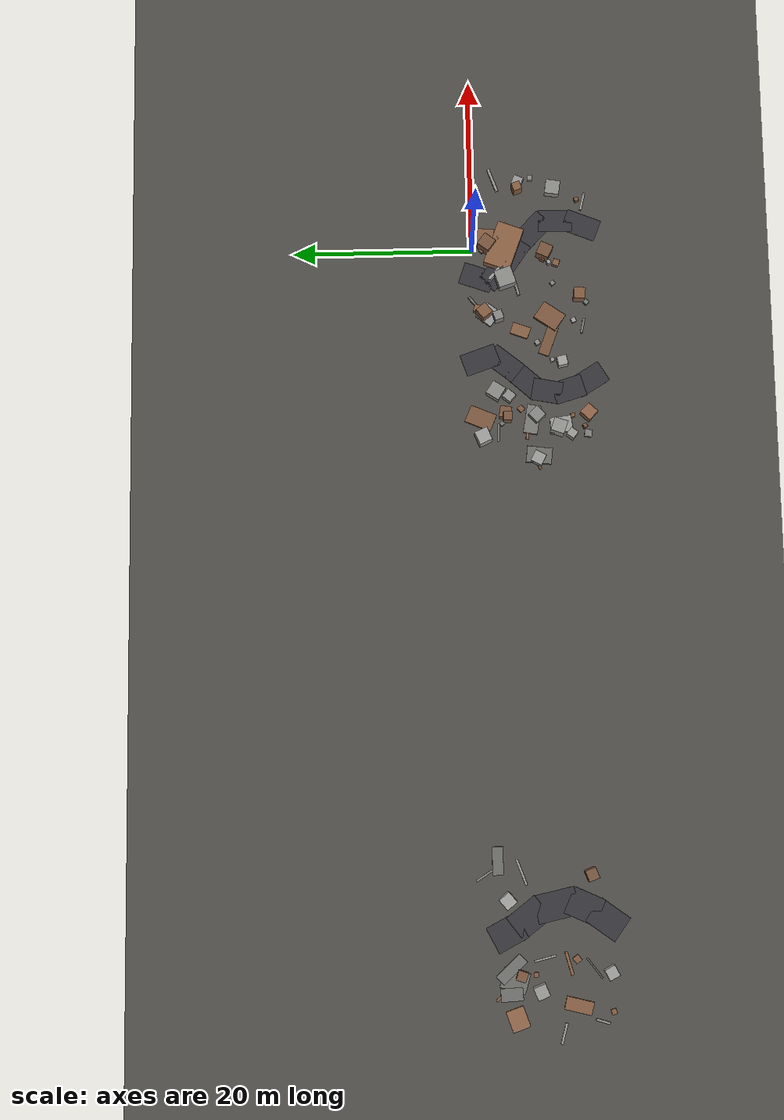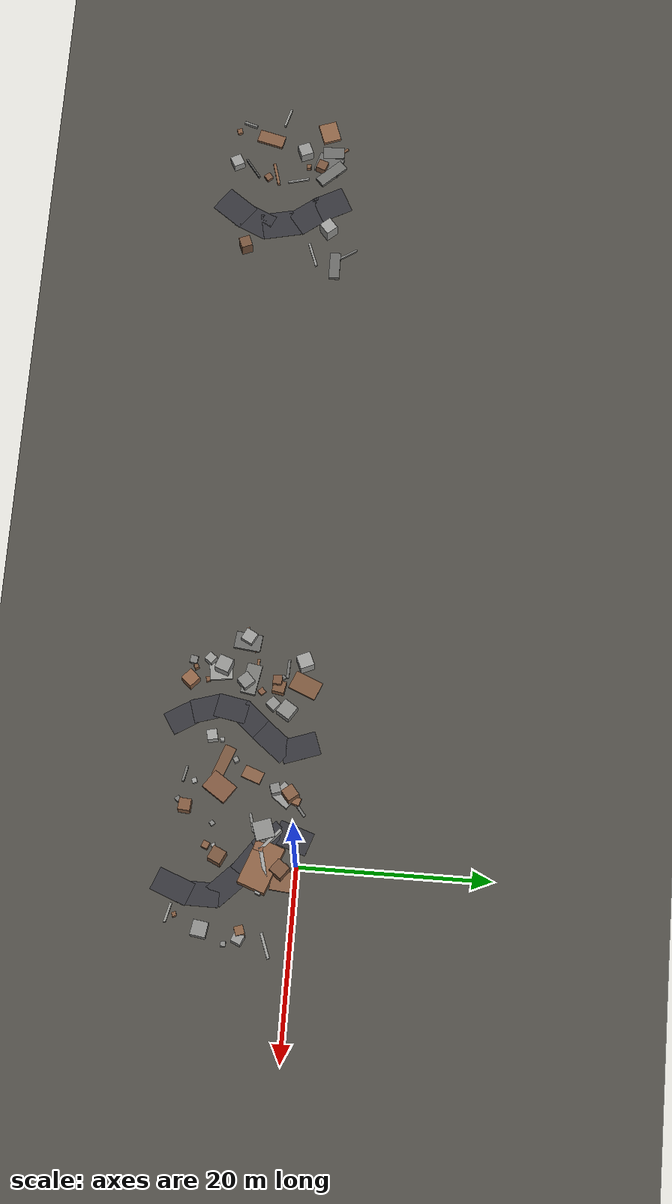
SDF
<sdf version="1.6">
 <world name="navitas_arena">
  <model name="ground_plane">
   <static>true</static>
   <link name="link">
    <collision name="collision">
     <geometry><plane><normal>0 0 1</normal><size>400 400</size></plane></geometry>
     <surface><friction><ode><mu>0.800</mu><mu2>0.800</mu2></ode></friction></surface>
    </collision>
    <visual name="visual">
     <cast_shadows>false</cast_shadows>
     <geometry><plane><normal>0 0 1</normal><size>400 400</size></plane></geometry>
     <material><ambient>0.300 0.290 0.270 1</ambient><diffuse>0.300 0.290 0.270 1</diffuse></material>
    </visual>
   </link>
  </model>
  <model name="road_kolay_3_6">
   <static>true</static>
   <pose>-73.475 -12.817 0.040 0 0 0.941</pose>
   <link name="link">
    <collision name="col"><geometry><box><size>3.773 3.000 0.020</size></box></geometry></collision>
    <visual name="vis">
     <geometry><box><size>3.773 3.000 0.020</size></box></geometry>
     <material><ambient>0.20 0.20 0.22 1</ambient><diffuse>0.20 0.20 0.22 1</diffuse></material>
    </visual>
   </link>
  </model>
  <model name="road_kolay_3_7">
   <static>true</static>
   <pose>-72.074 -10.426 0.040 0 0 1.147</pose>
   <link name="link">
    <collision name="col"><geometry><box><size>3.600 3.000 0.020</size></box></geometry></collision>
    <visual name="vis">
     <geometry><box><size>3.600 3.000 0.020</size></box></geometry>
     <material><ambient>0.20 0.20 0.22 1</ambient><diffuse>0.20 0.20 0.22 1</diffuse></material>
    </visual>
   </link>
  </model>
  <model name="road_kolay_3_8">
   <static>true</static>
   <pose>-71.900 -7.431 0.040 0 0 1.784</pose>
   <link name="link">
    <collision name="col"><geometry><box><size>4.511 3.000 0.020</size></box></geometry></collision>
    <visual name="vis">
     <geometry><box><size>4.511 3.000 0.020</size></box></geometry>
     <material><ambient>0.20 0.20 0.22 1</ambient><diffuse>0.20 0.20 0.22 1</diffuse></material>
    </visual>
   </link>
  </model>
  <model name="road_kolay_3_9">
   <static>true</static>
   <pose>-73.177 -4.500 0.040 0 0 2.225</pose>
   <link name="link">
    <collision name="col"><geometry><box><size>3.840 3.000 0.020</size></box></geometry></collision>
    <visual name="vis">
     <geometry><box><size>3.840 3.000 0.020</size></box></geometry>
     <material><ambient>0.20 0.20 0.22 1</ambient><diffuse>0.20 0.20 0.22 1</diffuse></material>
    </visual>
   </link>
  </model>
  <model name="road_kolay_3_10">
   <static>true</static>
   <pose>-74.682 -2.167 0.040 0 0 2.053</pose>
   <link name="link">
    <collision name="col"><geometry><box><size>3.533 3.000 0.020</size></box></geometry></collision>
    <visual name="vis">
     <geometry><box><size>3.533 3.000 0.020</size></box></geometry>
     <material><ambient>0.20 0.20 0.22 1</ambient><diffuse>0.20 0.20 0.22 1</diffuse></material>
    </visual>
   </link>
  </model>
  <model name="deb_kolay_0">
   <static>true</static>
   <pose>-80.986 -1.653 0.134 0 0 2.243</pose>
   <link name="link">
    <collision name="col"><geometry><box><size>1.940 0.234 0.269</size></box></geometry></collision>
    <visual name="vis">
     <geometry><box><size>1.940 0.234 0.269</size></box></geometry>
     <material><ambient>0.52 0.37 0.26 1</ambient><diffuse>0.52 0.37 0.26 1</diffuse></material>
    </visual>
   </link>
  </model>
  <model name="deb_kolay_8">
   <static>true</static>
   <pose>-78.967 -5.083 0.316 0 0 1.615</pose>
   <link name="link">
    <collision name="col"><geometry><box><size>0.465 0.465 0.633</size></box></geometry></collision>
    <visual name="vis">
     <geometry><box><size>0.465 0.465 0.633</size></box></geometry>
     <material><ambient>0.48 0.34 0.24 1</ambient><diffuse>0.48 0.34 0.24 1</diffuse></material>
    </visual>
   </link>
  </model>
  <model name="deb_kolay_9">
   <static>true</static>
   <pose>-67.175 -1.306 0.229 0 0 0.005</pose>
   <link name="link">
    <collision name="col"><geometry><box><size>2.984 1.151 0.459</size></box></geometry></collision>
    <visual name="vis">
     <geometry><box><size>2.984 1.151 0.459</size></box></geometry>
     <material><ambient>0.40 0.40 0.39 1</ambient><diffuse>0.40 0.40 0.39 1</diffuse></material>
    </visual>
   </link>
  </model>
  <model name="deb_kolay_14">
   <static>true</static>
   <pose>-83.815 -11.952 0.199 0 0 1.275</pose>
   <link name="link">
    <collision name="col"><geometry><box><size>1.516 0.242 0.399</size></box></geometry></collision>
    <visual name="vis">
     <geometry><box><size>1.516 0.242 0.399</size></box></geometry>
     <material><ambient>0.52 0.52 0.51 1</ambient><diffuse>0.52 0.52 0.51 1</diffuse></material>
    </visual>
   </link>
  </model>
  <model name="deb_kolay_15">
   <static>true</static>
   <pose>-82.192 -9.511 0.186 0 0 1.329</pose>
   <link name="link">
    <collision name="col"><geometry><box><size>2.914 1.377 0.372</size></box></geometry></collision>
    <visual name="vis">
     <geometry><box><size>2.914 1.377 0.372</size></box></geometry>
     <material><ambient>0.50 0.35 0.25 1</ambient><diffuse>0.50 0.35 0.25 1</diffuse></material>
    </visual>
   </link>
  </model>
  <model name="deb_kolay_27">
   <static>true</static>
   <pose>-77.448 -9.439 0.221 0 0 0.662</pose>
   <link name="link">
    <collision name="col"><geometry><box><size>0.733 0.733 0.442</size></box></geometry></collision>
    <visual name="vis">
     <geometry><box><size>0.733 0.733 0.442</size></box></geometry>
     <material><ambient>0.47 0.33 0.24 1</ambient><diffuse>0.47 0.33 0.24 1</diffuse></material>
    </visual>
   </link>
  </model>
  <model name="deb_kolay_28">
   <static>true</static>
   <pose>-68.474 -0.262 0.135 0 0 2.136</pose>
   <link name="link">
    <collision name="col"><geometry><box><size>2.974 0.210 0.269</size></box></geometry></collision>
    <visual name="vis">
     <geometry><box><size>2.974 0.210 0.269</size></box></geometry>
     <material><ambient>0.47 0.47 0.46 1</ambient><diffuse>0.47 0.47 0.46 1</diffuse></material>
    </visual>
   </link>
  </model>
  <model name="deb_kolay_43">
   <static>true</static>
   <pose>-71.278 -2.280 0.886 0 0 2.277</pose>
   <link name="link">
    <collision name="col"><geometry><box><size>1.368 1.368 1.772</size></box></geometry></collision>
    <visual name="vis">
     <geometry><box><size>1.368 1.368 1.772</size></box></geometry>
     <material><ambient>0.61 0.61 0.60 1</ambient><diffuse>0.61 0.61 0.60 1</diffuse></material>
    </visual>
   </link>
  </model>
  <model name="deb_kolay_51">
   <static>true</static>
   <pose>-77.877 -8.583 0.205 0 0 0.270</pose>
   <link name="link">
    <collision name="col"><geometry><box><size>2.492 0.298 0.409</size></box></geometry></collision>
    <visual name="vis">
     <geometry><box><size>2.492 0.298 0.409</size></box></geometry>
     <material><ambient>0.51 0.36 0.26 1</ambient><diffuse>0.51 0.36 0.26 1</diffuse></material>
    </visual>
   </link>
  </model>
  <model name="deb_kolay_67">
   <static>true</static>
   <pose>-83.465 -3.079 0.202 0 0 0.342</pose>
   <link name="link">
    <collision name="col"><geometry><box><size>2.248 1.943 0.404</size></box></geometry></collision>
    <visual name="vis">
     <geometry><box><size>2.248 1.943 0.404</size></box></geometry>
     <material><ambient>0.54 0.38 0.27 1</ambient><diffuse>0.54 0.38 0.27 1</diffuse></material>
    </visual>
   </link>
  </model>
  <model name="deb_kolay_68">
   <static>true</static>
   <pose>-68.687 -11.192 0.895 0 0 1.948</pose>
   <link name="link">
    <collision name="col"><geometry><box><size>1.194 1.194 1.790</size></box></geometry></collision>
    <visual name="vis">
     <geometry><box><size>1.194 1.194 1.790</size></box></geometry>
     <material><ambient>0.45 0.32 0.23 1</ambient><diffuse>0.45 0.32 0.23 1</diffuse></material>
    </visual>
   </link>
  </model>
  <model name="deb_kolay_77">
   <static>true</static>
   <pose>-78.843 -13.010 0.566 0 0 0.491</pose>
   <link name="link">
    <collision name="col"><geometry><box><size>1.215 1.215 1.132</size></box></geometry></collision>
    <visual name="vis">
     <geometry><box><size>1.215 1.215 1.132</size></box></geometry>
     <material><ambient>0.59 0.59 0.58 1</ambient><diffuse>0.59 0.59 0.58 1</diffuse></material>
    </visual>
   </link>
  </model>
  <model name="deb_kolay_84">
   <static>true</static>
   <pose>-77.342 -6.082 0.115 0 0 1.813</pose>
   <link name="link">
    <collision name="col"><geometry><box><size>2.341 0.200 0.229</size></box></geometry></collision>
    <visual name="vis">
     <geometry><box><size>2.341 0.200 0.229</size></box></geometry>
     <material><ambient>0.57 0.57 0.56 1</ambient><diffuse>0.57 0.57 0.56 1</diffuse></material>
    </visual>
   </link>
  </model>
  <model name="deb_kolay_90">
   <static>true</static>
   <pose>-80.952 -2.483 0.175 0 0 1.630</pose>
   <link name="link">
    <collision name="col"><geometry><box><size>2.337 1.366 0.350</size></box></geometry></collision>
    <visual name="vis">
     <geometry><box><size>2.337 1.366 0.350</size></box></geometry>
     <material><ambient>0.41 0.41 0.40 1</ambient><diffuse>0.41 0.41 0.40 1</diffuse></material>
    </visual>
   </link>
  </model>
  <model name="deb_kolay_93">
   <static>true</static>
   <pose>-84.992 -7.869 0.179 0 0 2.871</pose>
   <link name="link">
    <collision name="col"><geometry><box><size>2.171 0.238 0.359</size></box></geometry></collision>
    <visual name="vis">
     <geometry><box><size>2.171 0.238 0.359</size></box></geometry>
     <material><ambient>0.57 0.57 0.55 1</ambient><diffuse>0.57 0.57 0.55 1</diffuse></material>
    </visual>
   </link>
  </model>
  <model name="deb_kolay_95">
   <static>true</static>
   <pose>-79.529 -2.859 0.148 0 0 1.280</pose>
   <link name="link">
    <collision name="col"><geometry><box><size>2.799 2.172 0.297</size></box></geometry></collision>
    <visual name="vis">
     <geometry><box><size>2.799 2.172 0.297</size></box></geometry>
     <material><ambient>0.40 0.40 0.39 1</ambient><diffuse>0.40 0.40 0.39 1</diffuse></material>
    </visual>
   </link>
  </model>
  <model name="deb_kolay_105">
   <static>true</static>
   <pose>-82.859 -13.120 0.200 0 0 0.328</pose>
   <link name="link">
    <collision name="col"><geometry><box><size>0.554 0.554 0.399</size></box></geometry></collision>
    <visual name="vis">
     <geometry><box><size>0.554 0.554 0.399</size></box></geometry>
     <material><ambient>0.49 0.34 0.24 1</ambient><diffuse>0.49 0.34 0.24 1</diffuse></material>
    </visual>
   </link>
  </model>
  <model name="deb_kolay_150">
   <static>true</static>
   <pose>-68.426 -3.818 0.095 0 0 0.357</pose>
   <link name="link">
    <collision name="col"><geometry><box><size>2.872 0.243 0.190</size></box></geometry></collision>
    <visual name="vis">
     <geometry><box><size>2.872 0.243 0.190</size></box></geometry>
     <material><ambient>0.59 0.59 0.58 1</ambient><diffuse>0.59 0.59 0.58 1</diffuse></material>
    </visual>
   </link>
  </model>
  <model name="deb_kolay_166">
   <static>true</static>
   <pose>-79.034 -3.582 0.541 0 0 2.791</pose>
   <link name="link">
    <collision name="col"><geometry><box><size>1.057 1.057 1.082</size></box></geometry></collision>
    <visual name="vis">
     <geometry><box><size>1.057 1.057 1.082</size></box></geometry>
     <material><ambient>0.46 0.32 0.23 1</ambient><diffuse>0.46 0.32 0.23 1</diffuse></material>
    </visual>
   </link>
  </model>
  <model name="deb_kolay_177">
   <static>true</static>
   <pose>-80.642 -5.575 0.693 0 0 0.395</pose>
   <link name="link">
    <collision name="col"><geometry><box><size>1.360 1.360 1.386</size></box></geometry></collision>
    <visual name="vis">
     <geometry><box><size>1.360 1.360 1.386</size></box></geometry>
     <material><ambient>0.57 0.57 0.56 1</ambient><diffuse>0.57 0.57 0.56 1</diffuse></material>
    </visual>
   </link>
  </model>
  <model name="deb_kolay_179">
   <static>true</static>
   <pose>-78.388 -2.526 0.213 0 0 2.321</pose>
   <link name="link">
    <collision name="col"><geometry><box><size>3.430 1.185 0.427</size></box></geometry></collision>
    <visual name="vis">
     <geometry><box><size>3.430 1.185 0.427</size></box></geometry>
     <material><ambient>0.42 0.42 0.41 1</ambient><diffuse>0.42 0.42 0.41 1</diffuse></material>
    </visual>
   </link>
  </model>
  <model name="deb_kolay_183">
   <static>true</static>
   <pose>-78.403 -11.255 0.200 0 0 0.652</pose>
   <link name="link">
    <collision name="col"><geometry><box><size>2.586 0.163 0.400</size></box></geometry></collision>
    <visual name="vis">
     <geometry><box><size>2.586 0.163 0.400</size></box></geometry>
     <material><ambient>0.42 0.42 0.41 1</ambient><diffuse>0.42 0.42 0.41 1</diffuse></material>
    </visual>
   </link>
  </model>
  <model name="road_orta_1_7">
   <static>true</static>
   <pose>-14.927 -12.817 0.040 0 0 2.121</pose>
   <link name="link">
    <collision name="col"><geometry><box><size>3.623 2.500 0.020</size></box></geometry></collision>
    <visual name="vis">
     <geometry><box><size>3.623 2.500 0.020</size></box></geometry>
     <material><ambient>0.20 0.20 0.22 1</ambient><diffuse>0.20 0.20 0.22 1</diffuse></material>
    </visual>
   </link>
  </model>
  <model name="road_orta_1_8">
   <static>true</static>
   <pose>-16.013 -10.426 0.040 0 0 1.866</pose>
   <link name="link">
    <collision name="col"><geometry><box><size>3.472 2.500 0.020</size></box></geometry></collision>
    <visual name="vis">
     <geometry><box><size>3.472 2.500 0.020</size></box></geometry>
     <material><ambient>0.20 0.20 0.22 1</ambient><diffuse>0.20 0.20 0.22 1</diffuse></material>
    </visual>
   </link>
  </model>
  <model name="road_orta_1_9">
   <static>true</static>
   <pose>-16.165 -8.014 0.040 0 0 1.385</pose>
   <link name="link">
    <collision name="col"><geometry><box><size>3.304 2.500 0.020</size></box></geometry></collision>
    <visual name="vis">
     <geometry><box><size>3.304 2.500 0.020</size></box></geometry>
     <material><ambient>0.20 0.20 0.22 1</ambient><diffuse>0.20 0.20 0.22 1</diffuse></material>
    </visual>
   </link>
  </model>
  <model name="road_orta_1_10">
   <static>true</static>
   <pose>-14.905 -5.667 0.040 0 0 0.843</pose>
   <link name="link">
    <collision name="col"><geometry><box><size>4.024 2.500 0.020</size></box></geometry></collision>
    <visual name="vis">
     <geometry><box><size>4.024 2.500 0.020</size></box></geometry>
     <material><ambient>0.20 0.20 0.22 1</ambient><diffuse>0.20 0.20 0.22 1</diffuse></material>
    </visual>
   </link>
  </model>
  <model name="road_orta_1_11">
   <static>true</static>
   <pose>-12.931 -3.333 0.040 0 0 0.895</pose>
   <link name="link">
    <collision name="col"><geometry><box><size>3.890 2.500 0.020</size></box></geometry></collision>
    <visual name="vis">
     <geometry><box><size>3.890 2.500 0.020</size></box></geometry>
     <material><ambient>0.20 0.20 0.22 1</ambient><diffuse>0.20 0.20 0.22 1</diffuse></material>
    </visual>
   </link>
  </model>
  <model name="road_orta_1_12">
   <static>true</static>
   <pose>-12.509 -0.708 0.040 0 0 1.909</pose>
   <link name="link">
    <collision name="col"><geometry><box><size>3.991 2.500 0.020</size></box></geometry></collision>
    <visual name="vis">
     <geometry><box><size>3.991 2.500 0.020</size></box></geometry>
     <material><ambient>0.20 0.20 0.22 1</ambient><diffuse>0.20 0.20 0.22 1</diffuse></material>
    </visual>
   </link>
  </model>
  <model name="road_orta_2_3">
   <static>true</static>
   <pose>2.908 -12.340 0.040 0 0 1.194</pose>
   <link name="link">
    <collision name="col"><geometry><box><size>3.954 2.500 0.020</size></box></geometry></collision>
    <visual name="vis">
     <geometry><box><size>3.954 2.500 0.020</size></box></geometry>
     <material><ambient>0.20 0.20 0.22 1</ambient><diffuse>0.20 0.20 0.22 1</diffuse></material>
    </visual>
   </link>
  </model>
  <model name="road_orta_2_4">
   <static>true</static>
   <pose>3.486 -9.460 0.040 0 0 1.559</pose>
   <link name="link">
    <collision name="col"><geometry><box><size>3.820 2.500 0.020</size></box></geometry></collision>
    <visual name="vis">
     <geometry><box><size>3.820 2.500 0.020</size></box></geometry>
     <material><ambient>0.20 0.20 0.22 1</ambient><diffuse>0.20 0.20 0.22 1</diffuse></material>
    </visual>
   </link>
  </model>
  <model name="road_orta_2_5">
   <static>true</static>
   <pose>2.150 -6.688 0.040 0 0 2.371</pose>
   <link name="link">
    <collision name="col"><geometry><box><size>4.669 2.500 0.020</size></box></geometry></collision>
    <visual name="vis">
     <geometry><box><size>4.669 2.500 0.020</size></box></geometry>
     <material><ambient>0.20 0.20 0.22 1</ambient><diffuse>0.20 0.20 0.22 1</diffuse></material>
    </visual>
   </link>
  </model>
  <model name="road_orta_2_6">
   <static>true</static>
   <pose>-0.445 -4.500 0.040 0 0 2.528</pose>
   <link name="link">
    <collision name="col"><geometry><box><size>3.941 2.500 0.020</size></box></geometry></collision>
    <visual name="vis">
     <geometry><box><size>3.941 2.500 0.020</size></box></geometry>
     <material><ambient>0.20 0.20 0.22 1</ambient><diffuse>0.20 0.20 0.22 1</diffuse></material>
    </visual>
   </link>
  </model>
  <model name="road_orta_2_7">
   <static>true</static>
   <pose>-2.566 -2.750 0.040 0 0 2.357</pose>
   <link name="link">
    <collision name="col"><geometry><box><size>3.378 2.500 0.020</size></box></geometry></collision>
    <visual name="vis">
     <geometry><box><size>3.378 2.500 0.020</size></box></geometry>
     <material><ambient>0.20 0.20 0.22 1</ambient><diffuse>0.20 0.20 0.22 1</diffuse></material>
    </visual>
   </link>
  </model>
  <model name="road_orta_2_8">
   <static>true</static>
   <pose>-2.988 -0.562 0.040 0 0 1.237</pose>
   <link name="link">
    <collision name="col"><geometry><box><size>3.678 2.500 0.020</size></box></geometry></collision>
    <visual name="vis">
     <geometry><box><size>3.678 2.500 0.020</size></box></geometry>
     <material><ambient>0.20 0.20 0.22 1</ambient><diffuse>0.20 0.20 0.22 1</diffuse></material>
    </visual>
   </link>
  </model>
  <model name="blk_orta_2_0_0">
   <static>true</static>
   <pose>-0.073 -3.397 0.600 0 0 0.245</pose>
   <link name="link">
    <collision name="col"><geometry><box><size>3.097 0.386 1.200</size></box></geometry></collision>
    <visual name="vis">
     <geometry><box><size>3.097 0.386 1.200</size></box></geometry>
     <material><ambient>0.61 0.61 0.60 1</ambient><diffuse>0.61 0.61 0.60 1</diffuse></material>
    </visual>
   </link>
  </model>
  <model name="blk_orta_2_0_1">
   <static>true</static>
   <pose>-2.271 -3.767 0.600 0 0 0.562</pose>
   <link name="link">
    <collision name="col"><geometry><box><size>0.749 0.749 1.200</size></box></geometry></collision>
    <visual name="vis">
     <geometry><box><size>0.749 0.749 1.200</size></box></geometry>
     <material><ambient>0.41 0.41 0.40 1</ambient><diffuse>0.41 0.41 0.40 1</diffuse></material>
    </visual>
   </link>
  </model>
  <model name="blk_orta_2_0_2">
   <static>true</static>
   <pose>0.299 -3.550 0.600 0 0 2.786</pose>
   <link name="link">
    <collision name="col"><geometry><box><size>5.031 3.014 1.200</size></box></geometry></collision>
    <visual name="vis">
     <geometry><box><size>5.031 3.014 1.200</size></box></geometry>
     <material><ambient>0.53 0.37 0.26 1</ambient><diffuse>0.53 0.37 0.26 1</diffuse></material>
    </visual>
   </link>
  </model>
  <model name="blk_orta_2_0_3">
   <static>true</static>
   <pose>-1.665 -3.922 0.600 0 0 2.895</pose>
   <link name="link">
    <collision name="col"><geometry><box><size>0.974 0.974 1.200</size></box></geometry></collision>
    <visual name="vis">
     <geometry><box><size>0.974 0.974 1.200</size></box></geometry>
     <material><ambient>0.54 0.37 0.27 1</ambient><diffuse>0.54 0.37 0.27 1</diffuse></material>
    </visual>
   </link>
  </model>
  <model name="blk_orta_2_0_4">
   <static>true</static>
   <pose>-3.351 -3.601 0.717 0 0 1.896</pose>
   <link name="link">
    <collision name="col"><geometry><box><size>1.968 1.968 1.435</size></box></geometry></collision>
    <visual name="vis">
     <geometry><box><size>1.968 1.968 1.435</size></box></geometry>
     <material><ambient>0.53 0.53 0.52 1</ambient><diffuse>0.53 0.53 0.52 1</diffuse></material>
    </visual>
   </link>
  </model>
  <model name="blk_orta_2_0_5">
   <static>true</static>
   <pose>-2.448 -2.800 0.600 0 0 2.432</pose>
   <link name="link">
    <collision name="col"><geometry><box><size>2.957 0.298 1.200</size></box></geometry></collision>
    <visual name="vis">
     <geometry><box><size>2.957 0.298 1.200</size></box></geometry>
     <material><ambient>0.61 0.61 0.60 1</ambient><diffuse>0.61 0.61 0.60 1</diffuse></material>
    </visual>
   </link>
  </model>
  <model name="deb_orta_4">
   <static>true</static>
   <pose>0.614 -1.627 0.897 0 0 2.499</pose>
   <link name="link">
    <collision name="col"><geometry><box><size>1.496 1.496 1.793</size></box></geometry></collision>
    <visual name="vis">
     <geometry><box><size>1.496 1.496 1.793</size></box></geometry>
     <material><ambient>0.46 0.32 0.23 1</ambient><diffuse>0.46 0.32 0.23 1</diffuse></material>
    </visual>
   </link>
  </model>
  <model name="deb_orta_6">
   <static>true</static>
   <pose>-10.677 -7.072 0.245 0 0 2.111</pose>
   <link name="link">
    <collision name="col"><geometry><box><size>0.538 0.538 0.489</size></box></geometry></collision>
    <visual name="vis">
     <geometry><box><size>0.538 0.538 0.489</size></box></geometry>
     <material><ambient>0.52 0.52 0.51 1</ambient><diffuse>0.52 0.52 0.51 1</diffuse></material>
    </visual>
   </link>
  </model>
  <model name="deb_orta_12">
   <static>true</static>
   <pose>-20.028 -9.473 0.169 0 0 1.696</pose>
   <link name="link">
    <collision name="col"><geometry><box><size>2.366 1.749 0.339</size></box></geometry></collision>
    <visual name="vis">
     <geometry><box><size>2.366 1.749 0.339</size></box></geometry>
     <material><ambient>0.58 0.58 0.57 1</ambient><diffuse>0.58 0.58 0.57 1</diffuse></material>
    </visual>
   </link>
  </model>
  <model name="deb_orta_22">
   <static>true</static>
   <pose>-3.867 -8.940 0.216 0 0 2.261</pose>
   <link name="link">
    <collision name="col"><geometry><box><size>0.467 0.467 0.432</size></box></geometry></collision>
    <visual name="vis">
     <geometry><box><size>0.467 0.467 0.432</size></box></geometry>
     <material><ambient>0.49 0.49 0.48 1</ambient><diffuse>0.49 0.49 0.48 1</diffuse></material>
    </visual>
   </link>
  </model>
  <model name="deb_orta_28">
   <static>true</static>
   <pose>-6.226 -0.329 0.124 0 0 0.679</pose>
   <link name="link">
    <collision name="col"><geometry><box><size>2.383 0.280 0.248</size></box></geometry></collision>
    <visual name="vis">
     <geometry><box><size>2.383 0.280 0.248</size></box></geometry>
     <material><ambient>0.43 0.43 0.42 1</ambient><diffuse>0.43 0.43 0.42 1</diffuse></material>
    </visual>
   </link>
  </model>
  <model name="deb_orta_37">
   <static>true</static>
   <pose>-10.450 -8.315 0.122 0 0 2.783</pose>
   <link name="link">
    <collision name="col"><geometry><box><size>3.405 1.209 0.245</size></box></geometry></collision>
    <visual name="vis">
     <geometry><box><size>3.405 1.209 0.245</size></box></geometry>
     <material><ambient>0.45 0.32 0.23 1</ambient><diffuse>0.45 0.32 0.23 1</diffuse></material>
    </visual>
   </link>
  </model>
  <model name="deb_orta_41">
   <static>true</static>
   <pose>-19.413 -6.272 0.215 0 0 2.968</pose>
   <link name="link">
    <collision name="col"><geometry><box><size>3.204 1.560 0.431</size></box></geometry></collision>
    <visual name="vis">
     <geometry><box><size>3.204 1.560 0.431</size></box></geometry>
     <material><ambient>0.45 0.45 0.44 1</ambient><diffuse>0.45 0.45 0.44 1</diffuse></material>
    </visual>
   </link>
  </model>
  <model name="deb_orta_43">
   <static>true</static>
   <pose>-1.495 -8.566 0.377 0 0 0.531</pose>
   <link name="link">
    <collision name="col"><geometry><box><size>0.417 0.417 0.753</size></box></geometry></collision>
    <visual name="vis">
     <geometry><box><size>0.417 0.417 0.753</size></box></geometry>
     <material><ambient>0.60 0.60 0.59 1</ambient><diffuse>0.60 0.60 0.59 1</diffuse></material>
    </visual>
   </link>
  </model>
  <model name="deb_orta_44">
   <static>true</static>
   <pose>8.429 -6.701 0.283 0 0 1.526</pose>
   <link name="link">
    <collision name="col"><geometry><box><size>0.506 0.506 0.565</size></box></geometry></collision>
    <visual name="vis">
     <geometry><box><size>0.506 0.506 0.565</size></box></geometry>
     <material><ambient>0.51 0.51 0.50 1</ambient><diffuse>0.51 0.51 0.50 1</diffuse></material>
    </visual>
   </link>
  </model>
  <model name="deb_orta_51">
   <static>true</static>
   <pose>-7.334 -1.712 0.167 0 0 2.489</pose>
   <link name="link">
    <collision name="col"><geometry><box><size>2.031 2.043 0.334</size></box></geometry></collision>
    <visual name="vis">
     <geometry><box><size>2.031 2.043 0.334</size></box></geometry>
     <material><ambient>0.57 0.57 0.56 1</ambient><diffuse>0.57 0.57 0.56 1</diffuse></material>
    </visual>
   </link>
  </model>
  <model name="deb_orta_61">
   <static>true</static>
   <pose>-20.743 -5.713 0.184 0 0 3.075</pose>
   <link name="link">
    <collision name="col"><geometry><box><size>1.750 0.273 0.367</size></box></geometry></collision>
    <visual name="vis">
     <geometry><box><size>1.750 0.273 0.367</size></box></geometry>
     <material><ambient>0.51 0.36 0.25 1</ambient><diffuse>0.51 0.36 0.25 1</diffuse></material>
    </visual>
   </link>
  </model>
  <model name="deb_orta_63">
   <static>true</static>
   <pose>-20.820 -2.519 0.131 0 0 3.107</pose>
   <link name="link">
    <collision name="col"><geometry><box><size>1.998 0.293 0.262</size></box></geometry></collision>
    <visual name="vis">
     <geometry><box><size>1.998 0.293 0.262</size></box></geometry>
     <material><ambient>0.41 0.41 0.40 1</ambient><diffuse>0.41 0.41 0.40 1</diffuse></material>
    </visual>
   </link>
  </model>
  <model name="deb_orta_71">
   <static>true</static>
   <pose>-8.827 -12.174 0.234 0 0 2.939</pose>
   <link name="link">
    <collision name="col"><geometry><box><size>1.652 0.246 0.468</size></box></geometry></collision>
    <visual name="vis">
     <geometry><box><size>1.652 0.246 0.468</size></box></geometry>
     <material><ambient>0.45 0.45 0.44 1</ambient><diffuse>0.45 0.45 0.44 1</diffuse></material>
    </visual>
   </link>
  </model>
  <model name="deb_orta_75">
   <static>true</static>
   <pose>-20.871 -8.456 0.289 0 0 1.541</pose>
   <link name="link">
    <collision name="col"><geometry><box><size>0.418 0.418 0.578</size></box></geometry></collision>
    <visual name="vis">
     <geometry><box><size>0.418 0.418 0.578</size></box></geometry>
     <material><ambient>0.42 0.42 0.41 1</ambient><diffuse>0.42 0.42 0.41 1</diffuse></material>
    </visual>
   </link>
  </model>
  <model name="deb_orta_77">
   <static>true</static>
   <pose>-12.683 -8.677 0.294 0 0 1.755</pose>
   <link name="link">
    <collision name="col"><geometry><box><size>0.419 0.419 0.588</size></box></geometry></collision>
    <visual name="vis">
     <geometry><box><size>0.419 0.419 0.588</size></box></geometry>
     <material><ambient>0.57 0.57 0.56 1</ambient><diffuse>0.57 0.57 0.56 1</diffuse></material>
    </visual>
   </link>
  </model>
  <model name="deb_orta_95">
   <static>true</static>
   <pose>-7.736 -2.759 0.755 0 0 0.317</pose>
   <link name="link">
    <collision name="col"><geometry><box><size>0.999 0.999 1.509</size></box></geometry></collision>
    <visual name="vis">
     <geometry><box><size>0.999 0.999 1.509</size></box></geometry>
     <material><ambient>0.51 0.51 0.50 1</ambient><diffuse>0.51 0.51 0.50 1</diffuse></material>
    </visual>
   </link>
  </model>
  <model name="deb_orta_100">
   <static>true</static>
   <pose>-16.807 -3.753 0.506 0 0 0.867</pose>
   <link name="link">
    <collision name="col"><geometry><box><size>1.081 1.081 1.012</size></box></geometry></collision>
    <visual name="vis">
     <geometry><box><size>1.081 1.081 1.012</size></box></geometry>
     <material><ambient>0.54 0.54 0.53 1</ambient><diffuse>0.54 0.54 0.53 1</diffuse></material>
    </visual>
   </link>
  </model>
  <model name="deb_orta_103">
   <static>true</static>
   <pose>-8.180 -11.164 0.210 0 0 0.420</pose>
   <link name="link">
    <collision name="col"><geometry><box><size>0.499 0.499 0.420</size></box></geometry></collision>
    <visual name="vis">
     <geometry><box><size>0.499 0.499 0.420</size></box></geometry>
     <material><ambient>0.60 0.60 0.59 1</ambient><diffuse>0.60 0.60 0.59 1</diffuse></material>
    </visual>
   </link>
  </model>
  <model name="deb_orta_108">
   <static>true</static>
   <pose>-18.824 -12.501 0.653 0 0 0.819</pose>
   <link name="link">
    <collision name="col"><geometry><box><size>1.374 1.374 1.306</size></box></geometry></collision>
    <visual name="vis">
     <geometry><box><size>1.374 1.374 1.306</size></box></geometry>
     <material><ambient>0.55 0.38 0.27 1</ambient><diffuse>0.55 0.38 0.27 1</diffuse></material>
    </visual>
   </link>
  </model>
  <model name="deb_orta_113">
   <static>true</static>
   <pose>5.636 -12.572 0.152 0 0 2.904</pose>
   <link name="link">
    <collision name="col"><geometry><box><size>2.040 0.252 0.304</size></box></geometry></collision>
    <visual name="vis">
     <geometry><box><size>2.040 0.252 0.304</size></box></geometry>
     <material><ambient>0.56 0.56 0.54 1</ambient><diffuse>0.56 0.56 0.54 1</diffuse></material>
    </visual>
   </link>
  </model>
  <model name="deb_orta_115">
   <static>true</static>
   <pose>-7.700 -8.526 0.239 0 0 0.962</pose>
   <link name="link">
    <collision name="col"><geometry><box><size>2.832 2.163 0.478</size></box></geometry></collision>
    <visual name="vis">
     <geometry><box><size>2.832 2.163 0.478</size></box></geometry>
     <material><ambient>0.48 0.33 0.24 1</ambient><diffuse>0.48 0.33 0.24 1</diffuse></material>
    </visual>
   </link>
  </model>
  <model name="deb_orta_121">
   <static>true</static>
   <pose>-19.013 -6.767 0.643 0 0 2.308</pose>
   <link name="link">
    <collision name="col"><geometry><box><size>1.346 1.346 1.287</size></box></geometry></collision>
    <visual name="vis">
     <geometry><box><size>1.346 1.346 1.287</size></box></geometry>
     <material><ambient>0.51 0.51 0.50 1</ambient><diffuse>0.51 0.51 0.50 1</diffuse></material>
    </visual>
   </link>
  </model>
  <model name="deb_orta_123">
   <static>true</static>
   <pose>-19.830 -2.957 0.187 0 0 2.330</pose>
   <link name="link">
    <collision name="col"><geometry><box><size>0.460 0.460 0.373</size></box></geometry></collision>
    <visual name="vis">
     <geometry><box><size>0.460 0.460 0.373</size></box></geometry>
     <material><ambient>0.43 0.43 0.42 1</ambient><diffuse>0.43 0.43 0.42 1</diffuse></material>
    </visual>
   </link>
  </model>
  <model name="deb_orta_124">
   <static>true</static>
   <pose>-23.842 -6.826 0.548 0 0 2.651</pose>
   <link name="link">
    <collision name="col"><geometry><box><size>1.290 1.290 1.096</size></box></geometry></collision>
    <visual name="vis">
     <geometry><box><size>1.290 1.290 1.096</size></box></geometry>
     <material><ambient>0.59 0.59 0.58 1</ambient><diffuse>0.59 0.59 0.58 1</diffuse></material>
    </visual>
   </link>
  </model>
  <model name="deb_orta_125">
   <static>true</static>
   <pose>-20.457 -9.138 0.955 0 0 1.229</pose>
   <link name="link">
    <collision name="col"><geometry><box><size>1.502 1.502 1.910</size></box></geometry></collision>
    <visual name="vis">
     <geometry><box><size>1.502 1.502 1.910</size></box></geometry>
     <material><ambient>0.56 0.56 0.55 1</ambient><diffuse>0.56 0.56 0.55 1</diffuse></material>
    </visual>
   </link>
  </model>
  <model name="deb_orta_126">
   <static>true</static>
   <pose>8.281 -2.508 0.180 0 0 0.349</pose>
   <link name="link">
    <collision name="col"><geometry><box><size>2.721 0.295 0.360</size></box></geometry></collision>
    <visual name="vis">
     <geometry><box><size>2.721 0.295 0.360</size></box></geometry>
     <material><ambient>0.58 0.58 0.57 1</ambient><diffuse>0.58 0.58 0.57 1</diffuse></material>
    </visual>
   </link>
  </model>
  <model name="deb_orta_142">
   <static>true</static>
   <pose>0.032 -1.117 0.217 0 0 0.769</pose>
   <link name="link">
    <collision name="col"><geometry><box><size>0.472 0.472 0.435</size></box></geometry></collision>
    <visual name="vis">
     <geometry><box><size>0.472 0.472 0.435</size></box></geometry>
     <material><ambient>0.47 0.33 0.24 1</ambient><diffuse>0.47 0.33 0.24 1</diffuse></material>
    </visual>
   </link>
  </model>
  <model name="deb_orta_145">
   <static>true</static>
   <pose>-20.267 -12.067 0.384 0 0 2.062</pose>
   <link name="link">
    <collision name="col"><geometry><box><size>0.427 0.427 0.768</size></box></geometry></collision>
    <visual name="vis">
     <geometry><box><size>0.427 0.427 0.768</size></box></geometry>
     <material><ambient>0.47 0.33 0.23 1</ambient><diffuse>0.47 0.33 0.23 1</diffuse></material>
    </visual>
   </link>
  </model>
  <model name="deb_orta_148">
   <static>true</static>
   <pose>-6.733 -0.525 0.357 0 0 2.816</pose>
   <link name="link">
    <collision name="col"><geometry><box><size>0.795 0.795 0.714</size></box></geometry></collision>
    <visual name="vis">
     <geometry><box><size>0.795 0.795 0.714</size></box></geometry>
     <material><ambient>0.53 0.37 0.26 1</ambient><diffuse>0.53 0.37 0.26 1</diffuse></material>
    </visual>
   </link>
  </model>
  <model name="deb_orta_153">
   <static>true</static>
   <pose>-9.250 -5.224 0.152 0 0 1.215</pose>
   <link name="link">
    <collision name="col"><geometry><box><size>2.055 1.296 0.305</size></box></geometry></collision>
    <visual name="vis">
     <geometry><box><size>2.055 1.296 0.305</size></box></geometry>
     <material><ambient>0.51 0.36 0.26 1</ambient><diffuse>0.51 0.36 0.26 1</diffuse></material>
    </visual>
   </link>
  </model>
  <model name="deb_orta_157">
   <static>true</static>
   <pose>-1.538 -9.387 0.320 0 0 2.761</pose>
   <link name="link">
    <collision name="col"><geometry><box><size>0.707 0.707 0.641</size></box></geometry></collision>
    <visual name="vis">
     <geometry><box><size>0.707 0.707 0.641</size></box></geometry>
     <material><ambient>0.50 0.35 0.25 1</ambient><diffuse>0.50 0.35 0.25 1</diffuse></material>
    </visual>
   </link>
  </model>
  <model name="deb_orta_164">
   <static>true</static>
   <pose>-18.175 -5.074 0.182 0 0 2.310</pose>
   <link name="link">
    <collision name="col"><geometry><box><size>0.627 0.627 0.363</size></box></geometry></collision>
    <visual name="vis">
     <geometry><box><size>0.627 0.627 0.363</size></box></geometry>
     <material><ambient>0.48 0.33 0.24 1</ambient><diffuse>0.48 0.33 0.24 1</diffuse></material>
    </visual>
   </link>
  </model>
  <model name="deb_orta_171">
   <static>true</static>
   <pose>-19.170 -0.584 0.155 0 0 1.173</pose>
   <link name="link">
    <collision name="col"><geometry><box><size>3.021 1.964 0.309</size></box></geometry></collision>
    <visual name="vis">
     <geometry><box><size>3.021 1.964 0.309</size></box></geometry>
     <material><ambient>0.47 0.33 0.23 1</ambient><diffuse>0.47 0.33 0.23 1</diffuse></material>
    </visual>
   </link>
  </model>
  <model name="deb_orta_179">
   <static>true</static>
   <pose>-5.365 -11.843 0.758 0 0 1.477</pose>
   <link name="link">
    <collision name="col"><geometry><box><size>1.236 1.236 1.516</size></box></geometry></collision>
    <visual name="vis">
     <geometry><box><size>1.236 1.236 1.516</size></box></geometry>
     <material><ambient>0.49 0.34 0.24 1</ambient><diffuse>0.49 0.34 0.24 1</diffuse></material>
    </visual>
   </link>
  </model>
  <model name="deb_orta_183">
   <static>true</static>
   <pose>-21.450 -0.798 0.895 0 0 1.987</pose>
   <link name="link">
    <collision name="col"><geometry><box><size>1.490 1.490 1.789</size></box></geometry></collision>
    <visual name="vis">
     <geometry><box><size>1.490 1.490 1.789</size></box></geometry>
     <material><ambient>0.60 0.60 0.59 1</ambient><diffuse>0.60 0.60 0.59 1</diffuse></material>
    </visual>
   </link>
  </model>
  <model name="deb_orta_192">
   <static>true</static>
   <pose>-4.226 -4.888 0.184 0 0 0.255</pose>
   <link name="link">
    <collision name="col"><geometry><box><size>1.964 0.286 0.368</size></box></geometry></collision>
    <visual name="vis">
     <geometry><box><size>1.964 0.286 0.368</size></box></geometry>
     <material><ambient>0.50 0.50 0.49 1</ambient><diffuse>0.50 0.50 0.49 1</diffuse></material>
    </visual>
   </link>
  </model>
  <model name="deb_orta_194">
   <static>true</static>
   <pose>2.865 -3.608 0.367 0 0 1.184</pose>
   <link name="link">
    <collision name="col"><geometry><box><size>0.616 0.616 0.734</size></box></geometry></collision>
    <visual name="vis">
     <geometry><box><size>0.616 0.616 0.734</size></box></geometry>
     <material><ambient>0.60 0.60 0.59 1</ambient><diffuse>0.60 0.60 0.59 1</diffuse></material>
    </visual>
   </link>
  </model>
  <model name="deb_orta_197">
   <static>true</static>
   <pose>-6.130 -12.643 0.225 0 0 0.785</pose>
   <link name="link">
    <collision name="col"><geometry><box><size>0.511 0.511 0.449</size></box></geometry></collision>
    <visual name="vis">
     <geometry><box><size>0.511 0.511 0.449</size></box></geometry>
     <material><ambient>0.44 0.44 0.43 1</ambient><diffuse>0.44 0.44 0.43 1</diffuse></material>
    </visual>
   </link>
  </model>
  <model name="deb_orta_198">
   <static>true</static>
   <pose>7.864 -5.245 0.623 0 0 2.724</pose>
   <link name="link">
    <collision name="col"><geometry><box><size>1.076 1.076 1.246</size></box></geometry></collision>
    <visual name="vis">
     <geometry><box><size>1.076 1.076 1.246</size></box></geometry>
     <material><ambient>0.57 0.57 0.56 1</ambient><diffuse>0.57 0.57 0.56 1</diffuse></material>
    </visual>
   </link>
  </model>
  <model name="deb_orta_200">
   <static>true</static>
   <pose>-18.655 -3.291 0.522 0 0 2.964</pose>
   <link name="link">
    <collision name="col"><geometry><box><size>1.266 1.266 1.043</size></box></geometry></collision>
    <visual name="vis">
     <geometry><box><size>1.266 1.266 1.043</size></box></geometry>
     <material><ambient>0.47 0.33 0.23 1</ambient><diffuse>0.47 0.33 0.23 1</diffuse></material>
    </visual>
   </link>
  </model>
  <model name="deb_orta_203">
   <static>true</static>
   <pose>-0.355 -8.079 0.837 0 0 1.128</pose>
   <link name="link">
    <collision name="col"><geometry><box><size>1.451 1.451 1.674</size></box></geometry></collision>
    <visual name="vis">
     <geometry><box><size>1.451 1.451 1.674</size></box></geometry>
     <material><ambient>0.45 0.32 0.23 1</ambient><diffuse>0.45 0.32 0.23 1</diffuse></material>
    </visual>
   </link>
  </model>
  <model name="deb_orta_206">
   <static>true</static>
   <pose>-21.171 -10.614 0.596 0 0 0.926</pose>
   <link name="link">
    <collision name="col"><geometry><box><size>0.921 0.921 1.193</size></box></geometry></collision>
    <visual name="vis">
     <geometry><box><size>0.921 0.921 1.193</size></box></geometry>
     <material><ambient>0.58 0.58 0.57 1</ambient><diffuse>0.58 0.58 0.57 1</diffuse></material>
    </visual>
   </link>
  </model>
  <model name="deb_orta_212">
   <static>true</static>
   <pose>-19.221 -3.505 0.802 0 0 3.128</pose>
   <link name="link">
    <collision name="col"><geometry><box><size>0.935 0.935 1.603</size></box></geometry></collision>
    <visual name="vis">
     <geometry><box><size>0.935 0.935 1.603</size></box></geometry>
     <material><ambient>0.46 0.32 0.23 1</ambient><diffuse>0.46 0.32 0.23 1</diffuse></material>
    </visual>
   </link>
  </model>
  <model name="deb_orta_218">
   <static>true</static>
   <pose>-21.080 -12.413 0.241 0 0 1.416</pose>
   <link name="link">
    <collision name="col"><geometry><box><size>0.783 0.783 0.483</size></box></geometry></collision>
    <visual name="vis">
     <geometry><box><size>0.783 0.783 0.483</size></box></geometry>
     <material><ambient>0.47 0.47 0.46 1</ambient><diffuse>0.47 0.47 0.46 1</diffuse></material>
    </visual>
   </link>
  </model>
  <model name="deb_orta_221">
   <static>true</static>
   <pose>7.138 -5.143 0.779 0 0 0.332</pose>
   <link name="link">
    <collision name="col"><geometry><box><size>0.944 0.944 1.557</size></box></geometry></collision>
    <visual name="vis">
     <geometry><box><size>0.944 0.944 1.557</size></box></geometry>
     <material><ambient>0.51 0.36 0.25 1</ambient><diffuse>0.51 0.36 0.25 1</diffuse></material>
    </visual>
   </link>
  </model>
  <model name="deb_orta_236">
   <static>true</static>
   <pose>5.810 -11.891 0.283 0 0 1.936</pose>
   <link name="link">
    <collision name="col"><geometry><box><size>0.442 0.442 0.567</size></box></geometry></collision>
    <visual name="vis">
     <geometry><box><size>0.442 0.442 0.567</size></box></geometry>
     <material><ambient>0.48 0.34 0.24 1</ambient><diffuse>0.48 0.34 0.24 1</diffuse></material>
    </visual>
   </link>
  </model>
  <model name="deb_orta_243">
   <static>true</static>
   <pose>-19.043 -10.739 0.271 0 0 0.145</pose>
   <link name="link">
    <collision name="col"><geometry><box><size>0.433 0.433 0.542</size></box></geometry></collision>
    <visual name="vis">
     <geometry><box><size>0.433 0.433 0.542</size></box></geometry>
     <material><ambient>0.49 0.34 0.24 1</ambient><diffuse>0.49 0.34 0.24 1</diffuse></material>
    </visual>
   </link>
  </model>
  <model name="deb_orta_244">
   <static>true</static>
   <pose>-0.978 -7.911 0.358 0 0 2.649</pose>
   <link name="link">
    <collision name="col"><geometry><box><size>0.565 0.565 0.717</size></box></geometry></collision>
    <visual name="vis">
     <geometry><box><size>0.565 0.565 0.717</size></box></geometry>
     <material><ambient>0.48 0.33 0.24 1</ambient><diffuse>0.48 0.33 0.24 1</diffuse></material>
    </visual>
   </link>
  </model>
  <model name="deb_orta_248">
   <static>true</static>
   <pose>7.150 -9.195 0.509 0 0 1.419</pose>
   <link name="link">
    <collision name="col"><geometry><box><size>1.591 1.591 1.017</size></box></geometry></collision>
    <visual name="vis">
     <geometry><box><size>1.591 1.591 1.017</size></box></geometry>
     <material><ambient>0.53 0.53 0.52 1</ambient><diffuse>0.53 0.53 0.52 1</diffuse></material>
    </visual>
   </link>
  </model>
  <model name="deb_orta_258">
   <static>true</static>
   <pose>-23.443 -6.939 0.194 0 0 1.456</pose>
   <link name="link">
    <collision name="col"><geometry><box><size>2.779 1.787 0.388</size></box></geometry></collision>
    <visual name="vis">
     <geometry><box><size>2.779 1.787 0.388</size></box></geometry>
     <material><ambient>0.40 0.40 0.39 1</ambient><diffuse>0.40 0.40 0.39 1</diffuse></material>
    </visual>
   </link>
  </model>
  <model name="deb_orta_265">
   <static>true</static>
   <pose>1.556 -1.320 0.137 0 0 1.479</pose>
   <link name="link">
    <collision name="col"><geometry><box><size>2.311 2.132 0.274</size></box></geometry></collision>
    <visual name="vis">
     <geometry><box><size>2.311 2.132 0.274</size></box></geometry>
     <material><ambient>0.50 0.35 0.25 1</ambient><diffuse>0.50 0.35 0.25 1</diffuse></material>
    </visual>
   </link>
  </model>
  <model name="deb_orta_266">
   <static>true</static>
   <pose>-23.711 -6.544 0.107 0 0 0.393</pose>
   <link name="link">
    <collision name="col"><geometry><box><size>2.815 0.279 0.214</size></box></geometry></collision>
    <visual name="vis">
     <geometry><box><size>2.815 0.279 0.214</size></box></geometry>
     <material><ambient>0.50 0.35 0.25 1</ambient><diffuse>0.50 0.35 0.25 1</diffuse></material>
    </visual>
   </link>
  </model>
  <model name="deb_orta_268">
   <static>true</static>
   <pose>-7.311 -1.201 0.923 0 0 2.243</pose>
   <link name="link">
    <collision name="col"><geometry><box><size>1.315 1.315 1.846</size></box></geometry></collision>
    <visual name="vis">
     <geometry><box><size>1.315 1.315 1.846</size></box></geometry>
     <material><ambient>0.50 0.35 0.25 1</ambient><diffuse>0.50 0.35 0.25 1</diffuse></material>
    </visual>
   </link>
  </model>
  <model name="chic_orta_3">
   <static>true</static>
   <pose>-12.968 -9.739 0.600 0 0 1.794</pose>
   <link name="link">
    <collision name="col"><geometry><box><size>1.066 1.066 1.200</size></box></geometry></collision>
    <visual name="vis">
     <geometry><box><size>1.066 1.066 1.200</size></box></geometry>
     <material><ambient>0.61 0.61 0.60 1</ambient><diffuse>0.61 0.61 0.60 1</diffuse></material>
    </visual>
   </link>
  </model>
  <model name="chic_orta_4">
   <static>true</static>
   <pose>-16.224 -2.292 0.600 0 0 2.558</pose>
   <link name="link">
    <collision name="col"><geometry><box><size>1.600 1.600 1.200</size></box></geometry></collision>
    <visual name="vis">
     <geometry><box><size>1.600 1.600 1.200</size></box></geometry>
     <material><ambient>0.52 0.52 0.51 1</ambient><diffuse>0.52 0.52 0.51 1</diffuse></material>
    </visual>
   </link>
  </model>
 </world>
</sdf>
